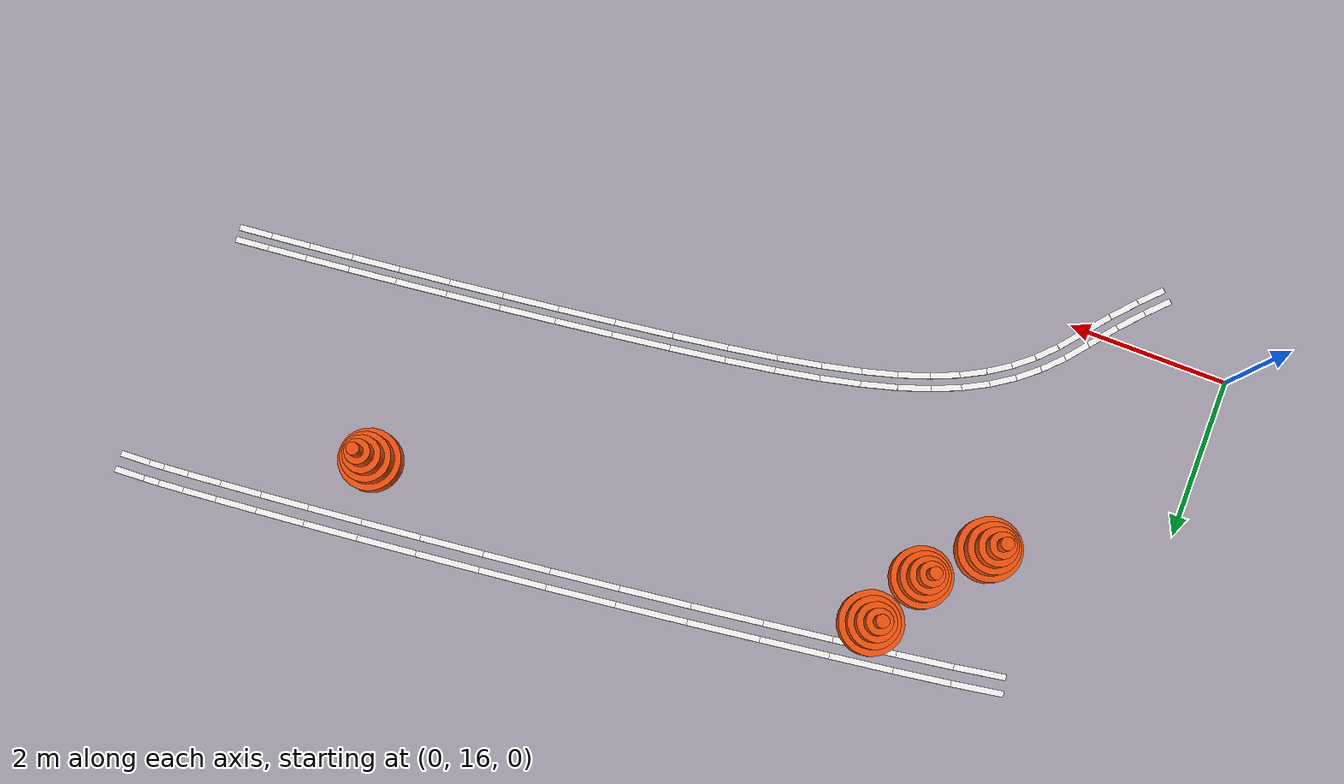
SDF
<sdf version="1.9">
 <world name="igvc_competition">
  <model name="Line_001_0096">
   <static>1</static>
   <pose>12.0856 21.6715 0.011 0 0 -3.091013</pose>
   <link name="link">
    <visual name="visual">
     <geometry><box><size>0.3699 0.0762 0.012</size></box></geometry>
     <material>
      <ambient>0.98 0.98 0.98 1</ambient>
      <diffuse>0.98 0.98 0.98 1</diffuse>
      <specular>0.05 0.05 0.05 1</specular>
      <emissive>0.9 0.9 0.9 1</emissive>
     </material>
    </visual>
   </link>
  </model>
  <model name="Line_001_0097">
   <static>1</static>
   <pose>12.0749 21.8713 0.011 0 0 -3.090726</pose>
   <link name="link">
    <visual name="visual">
     <geometry><box><size>0.3737 0.0762 0.012</size></box></geometry>
     <material>
      <ambient>0.98 0.98 0.98 1</ambient>
      <diffuse>0.98 0.98 0.98 1</diffuse>
      <specular>0.05 0.05 0.05 1</specular>
      <emissive>0.9 0.9 0.9 1</emissive>
     </material>
    </visual>
   </link>
  </model>
  <model name="Line_001_0098">
   <static>1</static>
   <pose>11.8079 21.6552 0.011 0 0 -3.066506</pose>
   <link name="link">
    <visual name="visual">
     <geometry><box><size>0.1866 0.0762 0.012</size></box></geometry>
     <material>
      <ambient>0.98 0.98 0.98 1</ambient>
      <diffuse>0.98 0.98 0.98 1</diffuse>
      <specular>0.05 0.05 0.05 1</specular>
      <emissive>0.9 0.9 0.9 1</emissive>
     </material>
    </visual>
   </link>
  </model>
  <model name="Line_001_0099">
   <static>1</static>
   <pose>11.7934 21.8547 0.011 0 0 -3.066877</pose>
   <link name="link">
    <visual name="visual">
     <geometry><box><size>0.1902 0.0762 0.012</size></box></geometry>
     <material>
      <ambient>0.98 0.98 0.98 1</ambient>
      <diffuse>0.98 0.98 0.98 1</diffuse>
      <specular>0.05 0.05 0.05 1</specular>
      <emissive>0.9 0.9 0.9 1</emissive>
     </material>
    </visual>
   </link>
  </model>
  <model name="Line_001_0100">
   <static>1</static>
   <pose>11.5619 21.6348 0.011 0 0 -3.054177</pose>
   <link name="link">
    <visual name="visual">
     <geometry><box><size>0.3070 0.0762 0.012</size></box></geometry>
     <material>
      <ambient>0.98 0.98 0.98 1</ambient>
      <diffuse>0.98 0.98 0.98 1</diffuse>
      <specular>0.05 0.05 0.05 1</specular>
      <emissive>0.9 0.9 0.9 1</emissive>
     </material>
    </visual>
   </link>
  </model>
  <model name="Line_001_0101">
   <static>1</static>
   <pose>11.5447 21.8341 0.011 0 0 -3.054097</pose>
   <link name="link">
    <visual name="visual">
     <geometry><box><size>0.3090 0.0762 0.012</size></box></geometry>
     <material>
      <ambient>0.98 0.98 0.98 1</ambient>
      <diffuse>0.98 0.98 0.98 1</diffuse>
      <specular>0.05 0.05 0.05 1</specular>
      <emissive>0.9 0.9 0.9 1</emissive>
     </material>
    </visual>
   </link>
  </model>
  <model name="Line_001_0102">
   <static>1</static>
   <pose>11.2020 21.6018 0.011 0 0 -3.047450</pose>
   <link name="link">
    <visual name="visual">
     <geometry><box><size>0.4159 0.0762 0.012</size></box></geometry>
     <material>
      <ambient>0.98 0.98 0.98 1</ambient>
      <diffuse>0.98 0.98 0.98 1</diffuse>
      <specular>0.05 0.05 0.05 1</specular>
      <emissive>0.9 0.9 0.9 1</emissive>
     </material>
    </visual>
   </link>
  </model>
  <model name="Line_001_0103">
   <static>1</static>
   <pose>11.1832 21.8010 0.011 0 0 -3.047459</pose>
   <link name="link">
    <visual name="visual">
     <geometry><box><size>0.4170 0.0762 0.012</size></box></geometry>
     <material>
      <ambient>0.98 0.98 0.98 1</ambient>
      <diffuse>0.98 0.98 0.98 1</diffuse>
      <specular>0.05 0.05 0.05 1</specular>
      <emissive>0.9 0.9 0.9 1</emissive>
     </material>
    </visual>
   </link>
  </model>
  <model name="Line_001_0104">
   <static>1</static>
   <pose>10.7394 21.5570 0.011 0 0 -3.042680</pose>
   <link name="link">
    <visual name="visual">
     <geometry><box><size>0.5134 0.0762 0.012</size></box></geometry>
     <material>
      <ambient>0.98 0.98 0.98 1</ambient>
      <diffuse>0.98 0.98 0.98 1</diffuse>
      <specular>0.05 0.05 0.05 1</specular>
      <emissive>0.9 0.9 0.9 1</emissive>
     </material>
    </visual>
   </link>
  </model>
  <model name="Line_001_0105">
   <static>1</static>
   <pose>10.7198 21.7560 0.011 0 0 -3.042640</pose>
   <link name="link">
    <visual name="visual">
     <geometry><box><size>0.5142 0.0762 0.012</size></box></geometry>
     <material>
      <ambient>0.98 0.98 0.98 1</ambient>
      <diffuse>0.98 0.98 0.98 1</diffuse>
      <specular>0.05 0.05 0.05 1</specular>
      <emissive>0.9 0.9 0.9 1</emissive>
     </material>
    </visual>
   </link>
  </model>
  <model name="Line_001_0106">
   <static>1</static>
   <pose>10.1857 21.5007 0.011 0 0 -3.038357</pose>
   <link name="link">
    <visual name="visual">
     <geometry><box><size>0.5997 0.0762 0.012</size></box></geometry>
     <material>
      <ambient>0.98 0.98 0.98 1</ambient>
      <diffuse>0.98 0.98 0.98 1</diffuse>
      <specular>0.05 0.05 0.05 1</specular>
      <emissive>0.9 0.9 0.9 1</emissive>
     </material>
    </visual>
   </link>
  </model>
  <model name="Line_001_0107">
   <static>1</static>
   <pose>10.1652 21.6996 0.011 0 0 -3.038345</pose>
   <link name="link">
    <visual name="visual">
     <geometry><box><size>0.6006 0.0762 0.012</size></box></geometry>
     <material>
      <ambient>0.98 0.98 0.98 1</ambient>
      <diffuse>0.98 0.98 0.98 1</diffuse>
      <specular>0.05 0.05 0.05 1</specular>
      <emissive>0.9 0.9 0.9 1</emissive>
     </material>
    </visual>
   </link>
  </model>
  <model name="Line_001_0108">
   <static>1</static>
   <pose>9.5519 21.4337 0.011 0 0 -3.034420</pose>
   <link name="link">
    <visual name="visual">
     <geometry><box><size>0.6750 0.0762 0.012</size></box></geometry>
     <material>
      <ambient>0.98 0.98 0.98 1</ambient>
      <diffuse>0.98 0.98 0.98 1</diffuse>
      <specular>0.05 0.05 0.05 1</specular>
      <emissive>0.9 0.9 0.9 1</emissive>
     </material>
    </visual>
   </link>
  </model>
  <model name="Line_001_0109">
   <static>1</static>
   <pose>9.5305 21.6326 0.011 0 0 -3.034400</pose>
   <link name="link">
    <visual name="visual">
     <geometry><box><size>0.6758 0.0762 0.012</size></box></geometry>
     <material>
      <ambient>0.98 0.98 0.98 1</ambient>
      <diffuse>0.98 0.98 0.98 1</diffuse>
      <specular>0.05 0.05 0.05 1</specular>
      <emissive>0.9 0.9 0.9 1</emissive>
     </material>
    </visual>
   </link>
  </model>
  <model name="Line_001_0110">
   <static>1</static>
   <pose>8.8491 21.3565 0.011 0 0 -3.030278</pose>
   <link name="link">
    <visual name="visual">
     <geometry><box><size>0.7391 0.0762 0.012</size></box></geometry>
     <material>
      <ambient>0.98 0.98 0.98 1</ambient>
      <diffuse>0.98 0.98 0.98 1</diffuse>
      <specular>0.05 0.05 0.05 1</specular>
      <emissive>0.9 0.9 0.9 1</emissive>
     </material>
    </visual>
   </link>
  </model>
  <model name="Line_001_0111">
   <static>1</static>
   <pose>8.8270 21.5553 0.011 0 0 -3.030398</pose>
   <link name="link">
    <visual name="visual">
     <geometry><box><size>0.7399 0.0762 0.012</size></box></geometry>
     <material>
      <ambient>0.98 0.98 0.98 1</ambient>
      <diffuse>0.98 0.98 0.98 1</diffuse>
      <specular>0.05 0.05 0.05 1</specular>
      <emissive>0.9 0.9 0.9 1</emissive>
     </material>
    </visual>
   </link>
  </model>
  <model name="Line_001_0112">
   <static>1</static>
   <pose>8.0885 21.2698 0.011 0 0 -3.026070</pose>
   <link name="link">
    <visual name="visual">
     <geometry><box><size>0.7921 0.0762 0.012</size></box></geometry>
     <material>
      <ambient>0.98 0.98 0.98 1</ambient>
      <diffuse>0.98 0.98 0.98 1</diffuse>
      <specular>0.05 0.05 0.05 1</specular>
      <emissive>0.9 0.9 0.9 1</emissive>
     </material>
    </visual>
   </link>
  </model>
  <model name="Line_001_0113">
   <static>1</static>
   <pose>8.0655 21.4686 0.011 0 0 -3.025950</pose>
   <link name="link">
    <visual name="visual">
     <geometry><box><size>0.7930 0.0762 0.012</size></box></geometry>
     <material>
      <ambient>0.98 0.98 0.98 1</ambient>
      <diffuse>0.98 0.98 0.98 1</diffuse>
      <specular>0.05 0.05 0.05 1</specular>
      <emissive>0.9 0.9 0.9 1</emissive>
     </material>
    </visual>
   </link>
  </model>
  <model name="Line_001_0114">
   <static>1</static>
   <pose>7.2811 21.1741 0.011 0 0 -3.021283</pose>
   <link name="link">
    <visual name="visual">
     <geometry><box><size>0.8340 0.0762 0.012</size></box></geometry>
     <material>
      <ambient>0.98 0.98 0.98 1</ambient>
      <diffuse>0.98 0.98 0.98 1</diffuse>
      <specular>0.05 0.05 0.05 1</specular>
      <emissive>0.9 0.9 0.9 1</emissive>
     </material>
    </visual>
   </link>
  </model>
  <model name="Line_001_0115">
   <static>1</static>
   <pose>7.2571 21.3727 0.011 0 0 -3.021308</pose>
   <link name="link">
    <visual name="visual">
     <geometry><box><size>0.8350 0.0762 0.012</size></box></geometry>
     <material>
      <ambient>0.98 0.98 0.98 1</ambient>
      <diffuse>0.98 0.98 0.98 1</diffuse>
      <specular>0.05 0.05 0.05 1</specular>
      <emissive>0.9 0.9 0.9 1</emissive>
     </material>
    </visual>
   </link>
  </model>
  <model name="Line_001_0116">
   <static>1</static>
   <pose>6.4381 21.0699 0.011 0 0 -3.016047</pose>
   <link name="link">
    <visual name="visual">
     <geometry><box><size>0.8649 0.0762 0.012</size></box></geometry>
     <material>
      <ambient>0.98 0.98 0.98 1</ambient>
      <diffuse>0.98 0.98 0.98 1</diffuse>
      <specular>0.05 0.05 0.05 1</specular>
      <emissive>0.9 0.9 0.9 1</emissive>
     </material>
    </visual>
   </link>
  </model>
  <model name="Line_001_0117">
   <static>1</static>
   <pose>6.4130 21.2684 0.011 0 0 -3.016092</pose>
   <link name="link">
    <visual name="visual">
     <geometry><box><size>0.8660 0.0762 0.012</size></box></geometry>
     <material>
      <ambient>0.98 0.98 0.98 1</ambient>
      <diffuse>0.98 0.98 0.98 1</diffuse>
      <specular>0.05 0.05 0.05 1</specular>
      <emissive>0.9 0.9 0.9 1</emissive>
     </material>
    </visual>
   </link>
  </model>
  <model name="Line_001_0118">
   <static>1</static>
   <pose>5.5705 20.9579 0.011 0 0 -3.010438</pose>
   <link name="link">
    <visual name="visual">
     <geometry><box><size>0.8847 0.0762 0.012</size></box></geometry>
     <material>
      <ambient>0.98 0.98 0.98 1</ambient>
      <diffuse>0.98 0.98 0.98 1</diffuse>
      <specular>0.05 0.05 0.05 1</specular>
      <emissive>0.9 0.9 0.9 1</emissive>
     </material>
    </visual>
   </link>
  </model>
  <model name="Line_001_0119">
   <static>1</static>
   <pose>5.5442 21.1562 0.011 0 0 -3.010391</pose>
   <link name="link">
    <visual name="visual">
     <geometry><box><size>0.8859 0.0762 0.012</size></box></geometry>
     <material>
      <ambient>0.98 0.98 0.98 1</ambient>
      <diffuse>0.98 0.98 0.98 1</diffuse>
      <specular>0.05 0.05 0.05 1</specular>
      <emissive>0.9 0.9 0.9 1</emissive>
     </material>
    </visual>
   </link>
  </model>
  <model name="Line_001_0120">
   <static>1</static>
   <pose>4.6892 20.8387 0.011 0 0 -3.003762</pose>
   <link name="link">
    <visual name="visual">
     <geometry><box><size>0.8938 0.0762 0.012</size></box></geometry>
     <material>
      <ambient>0.98 0.98 0.98 1</ambient>
      <diffuse>0.98 0.98 0.98 1</diffuse>
      <specular>0.05 0.05 0.05 1</specular>
      <emissive>0.9 0.9 0.9 1</emissive>
     </material>
    </visual>
   </link>
  </model>
  <model name="Line_001_0121">
   <static>1</static>
   <pose>4.6620 21.0369 0.011 0 0 -3.003790</pose>
   <link name="link">
    <visual name="visual">
     <geometry><box><size>0.8947 0.0762 0.012</size></box></geometry>
     <material>
      <ambient>0.98 0.98 0.98 1</ambient>
      <diffuse>0.98 0.98 0.98 1</diffuse>
      <specular>0.05 0.05 0.05 1</specular>
      <emissive>0.9 0.9 0.9 1</emissive>
     </material>
    </visual>
   </link>
  </model>
  <model name="Line_001_0122">
   <static>1</static>
   <pose>3.8236 20.7176 0.011 0 0 -3.001500</pose>
   <link name="link">
    <visual name="visual">
     <geometry><box><size>0.8544 0.0762 0.012</size></box></geometry>
     <material>
      <ambient>0.98 0.98 0.98 1</ambient>
      <diffuse>0.98 0.98 0.98 1</diffuse>
      <specular>0.05 0.05 0.05 1</specular>
      <emissive>0.9 0.9 0.9 1</emissive>
     </material>
    </visual>
   </link>
  </model>
  <model name="Line_001_0123">
   <static>1</static>
   <pose>3.7957 20.9158 0.011 0 0 -3.001565</pose>
   <link name="link">
    <visual name="visual">
     <geometry><box><size>0.8548 0.0762 0.012</size></box></geometry>
     <material>
      <ambient>0.98 0.98 0.98 1</ambient>
      <diffuse>0.98 0.98 0.98 1</diffuse>
      <specular>0.05 0.05 0.05 1</specular>
      <emissive>0.9 0.9 0.9 1</emissive>
     </material>
    </visual>
   </link>
  </model>
  <model name="Line_001_0124">
   <static>1</static>
   <pose>3.0162 20.6031 0.011 0 0 -2.999859</pose>
   <link name="link">
    <visual name="visual">
     <geometry><box><size>0.7766 0.0762 0.012</size></box></geometry>
     <material>
      <ambient>0.98 0.98 0.98 1</ambient>
      <diffuse>0.98 0.98 0.98 1</diffuse>
      <specular>0.05 0.05 0.05 1</specular>
      <emissive>0.9 0.9 0.9 1</emissive>
     </material>
    </visual>
   </link>
  </model>
  <model name="Line_001_0125">
   <static>1</static>
   <pose>2.9875 20.8011 0.011 0 0 -2.999805</pose>
   <link name="link">
    <visual name="visual">
     <geometry><box><size>0.7777 0.0762 0.012</size></box></geometry>
     <material>
      <ambient>0.98 0.98 0.98 1</ambient>
      <diffuse>0.98 0.98 0.98 1</diffuse>
      <specular>0.05 0.05 0.05 1</specular>
      <emissive>0.9 0.9 0.9 1</emissive>
     </material>
    </visual>
   </link>
  </model>
  <model name="Line_001_0126">
   <static>1</static>
   <pose>2.2842 20.4954 0.011 0 0 -2.990446</pose>
   <link name="link">
    <visual name="visual">
     <geometry><box><size>0.7033 0.0762 0.012</size></box></geometry>
     <material>
      <ambient>0.98 0.98 0.98 1</ambient>
      <diffuse>0.98 0.98 0.98 1</diffuse>
      <specular>0.05 0.05 0.05 1</specular>
      <emissive>0.9 0.9 0.9 1</emissive>
     </material>
    </visual>
   </link>
  </model>
  <model name="Line_001_0127">
   <static>1</static>
   <pose>2.2535 20.6930 0.011 0 0 -2.990343</pose>
   <link name="link">
    <visual name="visual">
     <geometry><box><size>0.7062 0.0762 0.012</size></box></geometry>
     <material>
      <ambient>0.98 0.98 0.98 1</ambient>
      <diffuse>0.98 0.98 0.98 1</diffuse>
      <specular>0.05 0.05 0.05 1</specular>
      <emissive>0.9 0.9 0.9 1</emissive>
     </material>
    </visual>
   </link>
  </model>
  <model name="Line_001_0128">
   <static>1</static>
   <pose>1.6237 20.3884 0.011 0 0 -2.970643</pose>
   <link name="link">
    <visual name="visual">
     <geometry><box><size>0.6349 0.0762 0.012</size></box></geometry>
     <material>
      <ambient>0.98 0.98 0.98 1</ambient>
      <diffuse>0.98 0.98 0.98 1</diffuse>
      <specular>0.05 0.05 0.05 1</specular>
      <emissive>0.9 0.9 0.9 1</emissive>
     </material>
    </visual>
   </link>
  </model>
  <model name="Line_001_0129">
   <static>1</static>
   <pose>1.5891 20.5853 0.011 0 0 -2.970666</pose>
   <link name="link">
    <visual name="visual">
     <geometry><box><size>0.6402 0.0762 0.012</size></box></geometry>
     <material>
      <ambient>0.98 0.98 0.98 1</ambient>
      <diffuse>0.98 0.98 0.98 1</diffuse>
      <specular>0.05 0.05 0.05 1</specular>
      <emissive>0.9 0.9 0.9 1</emissive>
     </material>
    </visual>
   </link>
  </model>
  <model name="Line_002_0104">
   <static>1</static>
   <pose>11.8320 18.5348 0.011 0 0 -3.040524</pose>
   <link name="link">
    <visual name="visual">
     <geometry><box><size>0.4192 0.0762 0.012</size></box></geometry>
     <material>
      <ambient>0.98 0.98 0.98 1</ambient>
      <diffuse>0.98 0.98 0.98 1</diffuse>
      <specular>0.05 0.05 0.05 1</specular>
      <emissive>0.9 0.9 0.9 1</emissive>
     </material>
    </visual>
   </link>
  </model>
  <model name="Line_002_0105">
   <static>1</static>
   <pose>11.8168 18.6921 0.011 0 0 -3.040455</pose>
   <link name="link">
    <visual name="visual">
     <geometry><box><size>0.4199 0.0762 0.012</size></box></geometry>
     <material>
      <ambient>0.98 0.98 0.98 1</ambient>
      <diffuse>0.98 0.98 0.98 1</diffuse>
      <specular>0.05 0.05 0.05 1</specular>
      <emissive>0.9 0.9 0.9 1</emissive>
     </material>
    </visual>
   </link>
  </model>
  <model name="Line_002_0106">
   <static>1</static>
   <pose>11.3800 18.4879 0.011 0 0 -3.036459</pose>
   <link name="link">
    <visual name="visual">
     <geometry><box><size>0.4898 0.0762 0.012</size></box></geometry>
     <material>
      <ambient>0.98 0.98 0.98 1</ambient>
      <diffuse>0.98 0.98 0.98 1</diffuse>
      <specular>0.05 0.05 0.05 1</specular>
      <emissive>0.9 0.9 0.9 1</emissive>
     </material>
    </visual>
   </link>
  </model>
  <model name="Line_002_0107">
   <static>1</static>
   <pose>11.3640 18.6452 0.011 0 0 -3.036406</pose>
   <link name="link">
    <visual name="visual">
     <geometry><box><size>0.4905 0.0762 0.012</size></box></geometry>
     <material>
      <ambient>0.98 0.98 0.98 1</ambient>
      <diffuse>0.98 0.98 0.98 1</diffuse>
      <specular>0.05 0.05 0.05 1</specular>
      <emissive>0.9 0.9 0.9 1</emissive>
     </material>
    </visual>
   </link>
  </model>
  <model name="Line_002_0108">
   <static>1</static>
   <pose>10.8624 18.4322 0.011 0 0 -3.032538</pose>
   <link name="link">
    <visual name="visual">
     <geometry><box><size>0.5513 0.0762 0.012</size></box></geometry>
     <material>
      <ambient>0.98 0.98 0.98 1</ambient>
      <diffuse>0.98 0.98 0.98 1</diffuse>
      <specular>0.05 0.05 0.05 1</specular>
      <emissive>0.9 0.9 0.9 1</emissive>
     </material>
    </visual>
   </link>
  </model>
  <model name="Line_002_0109">
   <static>1</static>
   <pose>10.8458 18.5893 0.011 0 0 -3.032476</pose>
   <link name="link">
    <visual name="visual">
     <geometry><box><size>0.5519 0.0762 0.012</size></box></geometry>
     <material>
      <ambient>0.98 0.98 0.98 1</ambient>
      <diffuse>0.98 0.98 0.98 1</diffuse>
      <specular>0.05 0.05 0.05 1</specular>
      <emissive>0.9 0.9 0.9 1</emissive>
     </material>
    </visual>
   </link>
  </model>
  <model name="Line_002_0110">
   <static>1</static>
   <pose>10.2885 18.3681 0.011 0 0 -3.028539</pose>
   <link name="link">
    <visual name="visual">
     <geometry><box><size>0.6037 0.0762 0.012</size></box></geometry>
     <material>
      <ambient>0.98 0.98 0.98 1</ambient>
      <diffuse>0.98 0.98 0.98 1</diffuse>
      <specular>0.05 0.05 0.05 1</specular>
      <emissive>0.9 0.9 0.9 1</emissive>
     </material>
    </visual>
   </link>
  </model>
  <model name="Line_002_0111">
   <static>1</static>
   <pose>10.2713 18.5252 0.011 0 0 -3.028505</pose>
   <link name="link">
    <visual name="visual">
     <geometry><box><size>0.6044 0.0762 0.012</size></box></geometry>
     <material>
      <ambient>0.98 0.98 0.98 1</ambient>
      <diffuse>0.98 0.98 0.98 1</diffuse>
      <specular>0.05 0.05 0.05 1</specular>
      <emissive>0.9 0.9 0.9 1</emissive>
     </material>
    </visual>
   </link>
  </model>
  <model name="Line_002_0112">
   <static>1</static>
   <pose>9.6673 18.2963 0.011 0 0 -3.024312</pose>
   <link name="link">
    <visual name="visual">
     <geometry><box><size>0.6469 0.0762 0.012</size></box></geometry>
     <material>
      <ambient>0.98 0.98 0.98 1</ambient>
      <diffuse>0.98 0.98 0.98 1</diffuse>
      <specular>0.05 0.05 0.05 1</specular>
      <emissive>0.9 0.9 0.9 1</emissive>
     </material>
    </visual>
   </link>
  </model>
  <model name="Line_002_0113">
   <static>1</static>
   <pose>9.6494 18.4533 0.011 0 0 -3.024439</pose>
   <link name="link">
    <visual name="visual">
     <geometry><box><size>0.6476 0.0762 0.012</size></box></geometry>
     <material>
      <ambient>0.98 0.98 0.98 1</ambient>
      <diffuse>0.98 0.98 0.98 1</diffuse>
      <specular>0.05 0.05 0.05 1</specular>
      <emissive>0.9 0.9 0.9 1</emissive>
     </material>
    </visual>
   </link>
  </model>
  <model name="Line_002_0114">
   <static>1</static>
   <pose>9.0081 18.2171 0.011 0 0 -3.019878</pose>
   <link name="link">
    <visual name="visual">
     <geometry><box><size>0.6811 0.0762 0.012</size></box></geometry>
     <material>
      <ambient>0.98 0.98 0.98 1</ambient>
      <diffuse>0.98 0.98 0.98 1</diffuse>
      <specular>0.05 0.05 0.05 1</specular>
      <emissive>0.9 0.9 0.9 1</emissive>
     </material>
    </visual>
   </link>
  </model>
  <model name="Line_002_0115">
   <static>1</static>
   <pose>8.9893 18.3740 0.011 0 0 -3.019893</pose>
   <link name="link">
    <visual name="visual">
     <geometry><box><size>0.6820 0.0762 0.012</size></box></geometry>
     <material>
      <ambient>0.98 0.98 0.98 1</ambient>
      <diffuse>0.98 0.98 0.98 1</diffuse>
      <specular>0.05 0.05 0.05 1</specular>
      <emissive>0.9 0.9 0.9 1</emissive>
     </material>
    </visual>
   </link>
  </model>
  <model name="Line_002_0116">
   <static>1</static>
   <pose>8.3196 18.1311 0.011 0 0 -3.014850</pose>
   <link name="link">
    <visual name="visual">
     <geometry><box><size>0.7065 0.0762 0.012</size></box></geometry>
     <material>
      <ambient>0.98 0.98 0.98 1</ambient>
      <diffuse>0.98 0.98 0.98 1</diffuse>
      <specular>0.05 0.05 0.05 1</specular>
      <emissive>0.9 0.9 0.9 1</emissive>
     </material>
    </visual>
   </link>
  </model>
  <model name="Line_002_0117">
   <static>1</static>
   <pose>8.3000 18.2879 0.011 0 0 -3.014853</pose>
   <link name="link">
    <visual name="visual">
     <geometry><box><size>0.7073 0.0762 0.012</size></box></geometry>
     <material>
      <ambient>0.98 0.98 0.98 1</ambient>
      <diffuse>0.98 0.98 0.98 1</diffuse>
      <specular>0.05 0.05 0.05 1</specular>
      <emissive>0.9 0.9 0.9 1</emissive>
     </material>
    </visual>
   </link>
  </model>
  <model name="Line_002_0118">
   <static>1</static>
   <pose>7.6111 18.0388 0.011 0 0 -3.009325</pose>
   <link name="link">
    <visual name="visual">
     <geometry><box><size>0.7226 0.0762 0.012</size></box></geometry>
     <material>
      <ambient>0.98 0.98 0.98 1</ambient>
      <diffuse>0.98 0.98 0.98 1</diffuse>
      <specular>0.05 0.05 0.05 1</specular>
      <emissive>0.9 0.9 0.9 1</emissive>
     </material>
    </visual>
   </link>
  </model>
  <model name="Line_002_0119">
   <static>1</static>
   <pose>7.5906 18.1955 0.011 0 0 -3.009233</pose>
   <link name="link">
    <visual name="visual">
     <geometry><box><size>0.7236 0.0762 0.012</size></box></geometry>
     <material>
      <ambient>0.98 0.98 0.98 1</ambient>
      <diffuse>0.98 0.98 0.98 1</diffuse>
      <specular>0.05 0.05 0.05 1</specular>
      <emissive>0.9 0.9 0.9 1</emissive>
     </material>
    </visual>
   </link>
  </model>
  <model name="Line_002_0120">
   <static>1</static>
   <pose>6.8916 17.9406 0.011 0 0 -3.002855</pose>
   <link name="link">
    <visual name="visual">
     <geometry><box><size>0.7296 0.0762 0.012</size></box></geometry>
     <material>
      <ambient>0.98 0.98 0.98 1</ambient>
      <diffuse>0.98 0.98 0.98 1</diffuse>
      <specular>0.05 0.05 0.05 1</specular>
      <emissive>0.9 0.9 0.9 1</emissive>
     </material>
    </visual>
   </link>
  </model>
  <model name="Line_002_0121">
   <static>1</static>
   <pose>6.8699 18.0971 0.011 0 0 -3.002849</pose>
   <link name="link">
    <visual name="visual">
     <geometry><box><size>0.7310 0.0762 0.012</size></box></geometry>
     <material>
      <ambient>0.98 0.98 0.98 1</ambient>
      <diffuse>0.98 0.98 0.98 1</diffuse>
      <specular>0.05 0.05 0.05 1</specular>
      <emissive>0.9 0.9 0.9 1</emissive>
     </material>
    </visual>
   </link>
  </model>
  <model name="Line_002_0122">
   <static>1</static>
   <pose>6.1881 17.8389 0.011 0 0 -2.992788</pose>
   <link name="link">
    <visual name="visual">
     <geometry><box><size>0.6920 0.0762 0.012</size></box></geometry>
     <material>
      <ambient>0.98 0.98 0.98 1</ambient>
      <diffuse>0.98 0.98 0.98 1</diffuse>
      <specular>0.05 0.05 0.05 1</specular>
      <emissive>0.9 0.9 0.9 1</emissive>
     </material>
    </visual>
   </link>
  </model>
  <model name="Line_002_0123">
   <static>1</static>
   <pose>6.1645 17.9952 0.011 0 0 -2.992874</pose>
   <link name="link">
    <visual name="visual">
     <geometry><box><size>0.6945 0.0762 0.012</size></box></geometry>
     <material>
      <ambient>0.98 0.98 0.98 1</ambient>
      <diffuse>0.98 0.98 0.98 1</diffuse>
      <specular>0.05 0.05 0.05 1</specular>
      <emissive>0.9 0.9 0.9 1</emissive>
     </material>
    </visual>
   </link>
  </model>
  <model name="Line_002_0124">
   <static>1</static>
   <pose>5.5401 17.7363 0.011 0 0 -2.975384</pose>
   <link name="link">
    <visual name="visual">
     <geometry><box><size>0.6201 0.0762 0.012</size></box></geometry>
     <material>
      <ambient>0.98 0.98 0.98 1</ambient>
      <diffuse>0.98 0.98 0.98 1</diffuse>
      <specular>0.05 0.05 0.05 1</specular>
      <emissive>0.9 0.9 0.9 1</emissive>
     </material>
    </visual>
   </link>
  </model>
  <model name="Line_002_0125">
   <static>1</static>
   <pose>5.5136 17.8920 0.011 0 0 -2.975205</pose>
   <link name="link">
    <visual name="visual">
     <geometry><box><size>0.6237 0.0762 0.012</size></box></geometry>
     <material>
      <ambient>0.98 0.98 0.98 1</ambient>
      <diffuse>0.98 0.98 0.98 1</diffuse>
      <specular>0.05 0.05 0.05 1</specular>
      <emissive>0.9 0.9 0.9 1</emissive>
     </material>
    </visual>
   </link>
  </model>
  <model name="Line_002_0126">
   <static>1</static>
   <pose>4.9620 17.6322 0.011 0 0 -2.950031</pose>
   <link name="link">
    <visual name="visual">
     <geometry><box><size>0.5546 0.0762 0.012</size></box></geometry>
     <material>
      <ambient>0.98 0.98 0.98 1</ambient>
      <diffuse>0.98 0.98 0.98 1</diffuse>
      <specular>0.05 0.05 0.05 1</specular>
      <emissive>0.9 0.9 0.9 1</emissive>
     </material>
    </visual>
   </link>
  </model>
  <model name="Line_002_0127">
   <static>1</static>
   <pose>4.9313 17.7872 0.011 0 0 -2.950295</pose>
   <link name="link">
    <visual name="visual">
     <geometry><box><size>0.5596 0.0762 0.012</size></box></geometry>
     <material>
      <ambient>0.98 0.98 0.98 1</ambient>
      <diffuse>0.98 0.98 0.98 1</diffuse>
      <specular>0.05 0.05 0.05 1</specular>
      <emissive>0.9 0.9 0.9 1</emissive>
     </material>
    </visual>
   </link>
  </model>
  <model name="Line_002_0128">
   <static>1</static>
   <pose>4.4483 17.5239 0.011 0 0 -2.915656</pose>
   <link name="link">
    <visual name="visual">
     <geometry><box><size>0.4955 0.0762 0.012</size></box></geometry>
     <material>
      <ambient>0.98 0.98 0.98 1</ambient>
      <diffuse>0.98 0.98 0.98 1</diffuse>
      <specular>0.05 0.05 0.05 1</specular>
      <emissive>0.9 0.9 0.9 1</emissive>
     </material>
    </visual>
   </link>
  </model>
  <model name="Line_002_0129">
   <static>1</static>
   <pose>4.4118 17.6776 0.011 0 0 -2.915346</pose>
   <link name="link">
    <visual name="visual">
     <geometry><box><size>0.5024 0.0762 0.012</size></box></geometry>
     <material>
      <ambient>0.98 0.98 0.98 1</ambient>
      <diffuse>0.98 0.98 0.98 1</diffuse>
      <specular>0.05 0.05 0.05 1</specular>
      <emissive>0.9 0.9 0.9 1</emissive>
     </material>
    </visual>
   </link>
  </model>
  <model name="Line_002_0130">
   <static>1</static>
   <pose>3.9933 17.4087 0.011 0 0 -2.869209</pose>
   <link name="link">
    <visual name="visual">
     <geometry><box><size>0.4434 0.0762 0.012</size></box></geometry>
     <material>
      <ambient>0.98 0.98 0.98 1</ambient>
      <diffuse>0.98 0.98 0.98 1</diffuse>
      <specular>0.05 0.05 0.05 1</specular>
      <emissive>0.9 0.9 0.9 1</emissive>
     </material>
    </visual>
   </link>
  </model>
  <model name="Line_002_0131">
   <static>1</static>
   <pose>3.9491 17.5605 0.011 0 0 -2.869214</pose>
   <link name="link">
    <visual name="visual">
     <geometry><box><size>0.4524 0.0762 0.012</size></box></geometry>
     <material>
      <ambient>0.98 0.98 0.98 1</ambient>
      <diffuse>0.98 0.98 0.98 1</diffuse>
      <specular>0.05 0.05 0.05 1</specular>
      <emissive>0.9 0.9 0.9 1</emissive>
     </material>
    </visual>
   </link>
  </model>
  <model name="Line_002_0132">
   <static>1</static>
   <pose>3.5913 17.2841 0.011 0 0 -2.809451</pose>
   <link name="link">
    <visual name="visual">
     <geometry><box><size>0.3987 0.0762 0.012</size></box></geometry>
     <material>
      <ambient>0.98 0.98 0.98 1</ambient>
      <diffuse>0.98 0.98 0.98 1</diffuse>
      <specular>0.05 0.05 0.05 1</specular>
      <emissive>0.9 0.9 0.9 1</emissive>
     </material>
    </visual>
   </link>
  </model>
  <model name="Line_002_0133">
   <static>1</static>
   <pose>3.5375 17.4327 0.011 0 0 -2.809430</pose>
   <link name="link">
    <visual name="visual">
     <geometry><box><size>0.4100 0.0762 0.012</size></box></geometry>
     <material>
      <ambient>0.98 0.98 0.98 1</ambient>
      <diffuse>0.98 0.98 0.98 1</diffuse>
      <specular>0.05 0.05 0.05 1</specular>
      <emissive>0.9 0.9 0.9 1</emissive>
     </material>
    </visual>
   </link>
  </model>
  <model name="Line_002_0134">
   <static>1</static>
   <pose>3.2366 17.1474 0.011 0 0 -2.734526</pose>
   <link name="link">
    <visual name="visual">
     <geometry><box><size>0.3622 0.0762 0.012</size></box></geometry>
     <material>
      <ambient>0.98 0.98 0.98 1</ambient>
      <diffuse>0.98 0.98 0.98 1</diffuse>
      <specular>0.05 0.05 0.05 1</specular>
      <emissive>0.9 0.9 0.9 1</emissive>
     </material>
    </visual>
   </link>
  </model>
  <model name="Line_002_0135">
   <static>1</static>
   <pose>3.1711 17.2914 0.011 0 0 -2.734361</pose>
   <link name="link">
    <visual name="visual">
     <geometry><box><size>0.3759 0.0762 0.012</size></box></geometry>
     <material>
      <ambient>0.98 0.98 0.98 1</ambient>
      <diffuse>0.98 0.98 0.98 1</diffuse>
      <specular>0.05 0.05 0.05 1</specular>
      <emissive>0.9 0.9 0.9 1</emissive>
     </material>
    </visual>
   </link>
  </model>
  <model name="Line_002_0136">
   <static>1</static>
   <pose>2.9231 16.9960 0.011 0 0 -2.645345</pose>
   <link name="link">
    <visual name="visual">
     <geometry><box><size>0.3348 0.0762 0.012</size></box></geometry>
     <material>
      <ambient>0.98 0.98 0.98 1</ambient>
      <diffuse>0.98 0.98 0.98 1</diffuse>
      <specular>0.05 0.05 0.05 1</specular>
      <emissive>0.9 0.9 0.9 1</emissive>
     </material>
    </visual>
   </link>
  </model>
  <model name="Line_002_0137">
   <static>1</static>
   <pose>2.8443 17.1335 0.011 0 0 -2.645159</pose>
   <link name="link">
    <visual name="visual">
     <geometry><box><size>0.3506 0.0762 0.012</size></box></geometry>
     <material>
      <ambient>0.98 0.98 0.98 1</ambient>
      <diffuse>0.98 0.98 0.98 1</diffuse>
      <specular>0.05 0.05 0.05 1</specular>
      <emissive>0.9 0.9 0.9 1</emissive>
     </material>
    </visual>
   </link>
  </model>
  <model name="Line_002_0138">
   <static>1</static>
   <pose>2.6446 16.8272 0.011 0 0 -2.545198</pose>
   <link name="link">
    <visual name="visual">
     <geometry><box><size>0.3173 0.0762 0.012</size></box></geometry>
     <material>
      <ambient>0.98 0.98 0.98 1</ambient>
      <diffuse>0.98 0.98 0.98 1</diffuse>
      <specular>0.05 0.05 0.05 1</specular>
      <emissive>0.9 0.9 0.9 1</emissive>
     </material>
    </visual>
   </link>
  </model>
  <model name="Line_002_0139">
   <static>1</static>
   <pose>2.5519 16.9562 0.011 0 0 -2.545376</pose>
   <link name="link">
    <visual name="visual">
     <geometry><box><size>0.3343 0.0762 0.012</size></box></geometry>
     <material>
      <ambient>0.98 0.98 0.98 1</ambient>
      <diffuse>0.98 0.98 0.98 1</diffuse>
      <specular>0.05 0.05 0.05 1</specular>
      <emissive>0.9 0.9 0.9 1</emissive>
     </material>
    </visual>
   </link>
  </model>
  <model name="Line_002_0140">
   <static>1</static>
   <pose>2.3948 16.6380 0.011 0 0 -2.440377</pose>
   <link name="link">
    <visual name="visual">
     <geometry><box><size>0.3103 0.0762 0.012</size></box></geometry>
     <material>
      <ambient>0.98 0.98 0.98 1</ambient>
      <diffuse>0.98 0.98 0.98 1</diffuse>
      <specular>0.05 0.05 0.05 1</specular>
      <emissive>0.9 0.9 0.9 1</emissive>
     </material>
    </visual>
   </link>
  </model>
  <model name="Line_002_0141">
   <static>1</static>
   <pose>2.2886 16.7568 0.011 0 0 -2.440359</pose>
   <link name="link">
    <visual name="visual">
     <geometry><box><size>0.3272 0.0762 0.012</size></box></geometry>
     <material>
      <ambient>0.98 0.98 0.98 1</ambient>
      <diffuse>0.98 0.98 0.98 1</diffuse>
      <specular>0.05 0.05 0.05 1</specular>
      <emissive>0.9 0.9 0.9 1</emissive>
     </material>
    </visual>
   </link>
  </model>
  <model name="Line_002_0142">
   <static>1</static>
   <pose>2.1674 16.4252 0.011 0 0 -2.339048</pose>
   <link name="link">
    <visual name="visual">
     <geometry><box><size>0.3134 0.0762 0.012</size></box></geometry>
     <material>
      <ambient>0.98 0.98 0.98 1</ambient>
      <diffuse>0.98 0.98 0.98 1</diffuse>
      <specular>0.05 0.05 0.05 1</specular>
      <emissive>0.9 0.9 0.9 1</emissive>
     </material>
    </visual>
   </link>
  </model>
  <model name="Line_002_0143">
   <static>1</static>
   <pose>2.0493 16.5329 0.011 0 0 -2.339218</pose>
   <link name="link">
    <visual name="visual">
     <geometry><box><size>0.3291 0.0762 0.012</size></box></geometry>
     <material>
      <ambient>0.98 0.98 0.98 1</ambient>
      <diffuse>0.98 0.98 0.98 1</diffuse>
      <specular>0.05 0.05 0.05 1</specular>
      <emissive>0.9 0.9 0.9 1</emissive>
     </material>
    </visual>
   </link>
  </model>
  <model name="Line_002_0144">
   <static>1</static>
   <pose>1.9554 16.1844 0.011 0 0 -2.248718</pose>
   <link name="link">
    <visual name="visual">
     <geometry><box><size>0.3289 0.0762 0.012</size></box></geometry>
     <material>
      <ambient>0.98 0.98 0.98 1</ambient>
      <diffuse>0.98 0.98 0.98 1</diffuse>
      <specular>0.05 0.05 0.05 1</specular>
      <emissive>0.9 0.9 0.9 1</emissive>
     </material>
    </visual>
   </link>
  </model>
  <model name="Line_002_0145">
   <static>1</static>
   <pose>1.8293 16.2835 0.011 0 0 -2.248922</pose>
   <link name="link">
    <visual name="visual">
     <geometry><box><size>0.3368 0.0762 0.012</size></box></geometry>
     <material>
      <ambient>0.98 0.98 0.98 1</ambient>
      <diffuse>0.98 0.98 0.98 1</diffuse>
      <specular>0.05 0.05 0.05 1</specular>
      <emissive>0.9 0.9 0.9 1</emissive>
     </material>
    </visual>
   </link>
  </model>
  <model name="Line_002_0146">
   <static>1</static>
   <pose>1.7202 15.8897 0.011 0 0 -2.241019</pose>
   <link name="link">
    <visual name="visual">
     <geometry><box><size>0.4252 0.0762 0.012</size></box></geometry>
     <material>
      <ambient>0.98 0.98 0.98 1</ambient>
      <diffuse>0.98 0.98 0.98 1</diffuse>
      <specular>0.05 0.05 0.05 1</specular>
      <emissive>0.9 0.9 0.9 1</emissive>
     </material>
    </visual>
   </link>
  </model>
  <model name="Line_002_0147">
   <static>1</static>
   <pose>1.5928 15.9872 0.011 0 0 -2.240978</pose>
   <link name="link">
    <visual name="visual">
     <geometry><box><size>0.4213 0.0762 0.012</size></box></geometry>
     <material>
      <ambient>0.98 0.98 0.98 1</ambient>
      <diffuse>0.98 0.98 0.98 1</diffuse>
      <specular>0.05 0.05 0.05 1</specular>
      <emissive>0.9 0.9 0.9 1</emissive>
     </material>
    </visual>
   </link>
  </model>
  <model name="Line_002_0148">
   <static>1</static>
   <pose>1.4575 15.5758 0.011 0 0 -2.296173</pose>
   <link name="link">
    <visual name="visual">
     <geometry><box><size>0.3937 0.0762 0.012</size></box></geometry>
     <material>
      <ambient>0.98 0.98 0.98 1</ambient>
      <diffuse>0.98 0.98 0.98 1</diffuse>
      <specular>0.05 0.05 0.05 1</specular>
      <emissive>0.9 0.9 0.9 1</emissive>
     </material>
    </visual>
   </link>
  </model>
  <model name="Line_002_0149">
   <static>1</static>
   <pose>1.3337 15.6775 0.011 0 0 -2.296149</pose>
   <link name="link">
    <visual name="visual">
     <geometry><box><size>0.3865 0.0762 0.012</size></box></geometry>
     <material>
      <ambient>0.98 0.98 0.98 1</ambient>
      <diffuse>0.98 0.98 0.98 1</diffuse>
      <specular>0.05 0.05 0.05 1</specular>
      <emissive>0.9 0.9 0.9 1</emissive>
     </material>
    </visual>
   </link>
  </model>
  <model name="Line_002_0150">
   <static>1</static>
   <pose>1.2014 15.2965 0.011 0 0 -2.330758</pose>
   <link name="link">
    <visual name="visual">
     <geometry><box><size>0.3642 0.0762 0.012</size></box></geometry>
     <material>
      <ambient>0.98 0.98 0.98 1</ambient>
      <diffuse>0.98 0.98 0.98 1</diffuse>
      <specular>0.05 0.05 0.05 1</specular>
      <emissive>0.9 0.9 0.9 1</emissive>
     </material>
    </visual>
   </link>
  </model>
  <model name="Line_002_0151">
   <static>1</static>
   <pose>1.0813 15.4022 0.011 0 0 -2.330901</pose>
   <link name="link">
    <visual name="visual">
     <geometry><box><size>0.3607 0.0762 0.012</size></box></geometry>
     <material>
      <ambient>0.98 0.98 0.98 1</ambient>
      <diffuse>0.98 0.98 0.98 1</diffuse>
      <specular>0.05 0.05 0.05 1</specular>
      <emissive>0.9 0.9 0.9 1</emissive>
     </material>
    </visual>
   </link>
  </model>
  <model name="Cones_057">
   <static>1</static>
   <pose>9.3731 20.6663 0 0 0 0</pose>
   <link name="link">
    <collision name="collision">
     <pose>0 0 0.5985 0 0 0</pose>
     <geometry><cylinder><radius>0.3831</radius><length>1.1969</length></cylinder></geometry>
    </collision>
    <visual name="visual_0">
     <pose>0 0 0.1197 0 0 0</pose>
     <geometry><cylinder><radius>0.3831</radius><length>0.2394</length></cylinder></geometry>
     <material>
      <ambient>0.95 0.32 0.05 1.0</ambient>
      <diffuse>0.95 0.32 0.05 1.0</diffuse>
      <specular>0.05 0.05 0.05 1</specular>
     </material>
    </visual>
    <visual name="visual_1">
     <pose>0 0 0.3591 0 0 0</pose>
     <geometry><cylinder><radius>0.3065</radius><length>0.2394</length></cylinder></geometry>
     <material>
      <ambient>0.95 0.32 0.05 1.0</ambient>
      <diffuse>0.95 0.32 0.05 1.0</diffuse>
      <specular>0.05 0.05 0.05 1</specular>
     </material>
    </visual>
    <visual name="visual_2">
     <pose>0 0 0.5985 0 0 0</pose>
     <geometry><cylinder><radius>0.2299</radius><length>0.2394</length></cylinder></geometry>
     <material>
      <ambient>0.95 0.32 0.05 1.0</ambient>
      <diffuse>0.95 0.32 0.05 1.0</diffuse>
      <specular>0.05 0.05 0.05 1</specular>
     </material>
    </visual>
    <visual name="visual_3">
     <pose>0 0 0.8378 0 0 0</pose>
     <geometry><cylinder><radius>0.1532</radius><length>0.2394</length></cylinder></geometry>
     <material>
      <ambient>0.95 0.32 0.05 1.0</ambient>
      <diffuse>0.95 0.32 0.05 1.0</diffuse>
      <specular>0.05 0.05 0.05 1</specular>
     </material>
    </visual>
    <visual name="visual_4">
     <pose>0 0 1.0772 0 0 0</pose>
     <geometry><cylinder><radius>0.0766</radius><length>0.2394</length></cylinder></geometry>
     <material>
      <ambient>0.95 0.32 0.05 1.0</ambient>
      <diffuse>0.95 0.32 0.05 1.0</diffuse>
      <specular>0.05 0.05 0.05 1</specular>
     </material>
    </visual>
   </link>
  </model>
  <model name="Cones_058">
   <static>1</static>
   <pose>3.0598 20.3187 0 0 0 0</pose>
   <link name="link">
    <collision name="collision">
     <pose>0 0 0.5985 0 0 0</pose>
     <geometry><cylinder><radius>0.3974</radius><length>1.1969</length></cylinder></geometry>
    </collision>
    <visual name="visual_0">
     <pose>0 0 0.1197 0 0 0</pose>
     <geometry><cylinder><radius>0.3974</radius><length>0.2394</length></cylinder></geometry>
     <material>
      <ambient>0.95 0.32 0.05 1.0</ambient>
      <diffuse>0.95 0.32 0.05 1.0</diffuse>
      <specular>0.05 0.05 0.05 1</specular>
     </material>
    </visual>
    <visual name="visual_1">
     <pose>0 0 0.3591 0 0 0</pose>
     <geometry><cylinder><radius>0.3179</radius><length>0.2394</length></cylinder></geometry>
     <material>
      <ambient>0.95 0.32 0.05 1.0</ambient>
      <diffuse>0.95 0.32 0.05 1.0</diffuse>
      <specular>0.05 0.05 0.05 1</specular>
     </material>
    </visual>
    <visual name="visual_2">
     <pose>0 0 0.5985 0 0 0</pose>
     <geometry><cylinder><radius>0.2384</radius><length>0.2394</length></cylinder></geometry>
     <material>
      <ambient>0.95 0.32 0.05 1.0</ambient>
      <diffuse>0.95 0.32 0.05 1.0</diffuse>
      <specular>0.05 0.05 0.05 1</specular>
     </material>
    </visual>
    <visual name="visual_3">
     <pose>0 0 0.8378 0 0 0</pose>
     <geometry><cylinder><radius>0.1590</radius><length>0.2394</length></cylinder></geometry>
     <material>
      <ambient>0.95 0.32 0.05 1.0</ambient>
      <diffuse>0.95 0.32 0.05 1.0</diffuse>
      <specular>0.05 0.05 0.05 1</specular>
     </material>
    </visual>
    <visual name="visual_4">
     <pose>0 0 1.0772 0 0 0</pose>
     <geometry><cylinder><radius>0.0795</radius><length>0.2394</length></cylinder></geometry>
     <material>
      <ambient>0.95 0.32 0.05 1.0</ambient>
      <diffuse>0.95 0.32 0.05 1.0</diffuse>
      <specular>0.05 0.05 0.05 1</specular>
     </material>
    </visual>
   </link>
  </model>
  <model name="Cones_059">
   <static>1</static>
   <pose>2.6839 19.5942 0 0 0 0</pose>
   <link name="link">
    <collision name="collision">
     <pose>0 0 0.5985 0 0 0</pose>
     <geometry><cylinder><radius>0.3793</radius><length>1.1969</length></cylinder></geometry>
    </collision>
    <visual name="visual_0">
     <pose>0 0 0.1197 0 0 0</pose>
     <geometry><cylinder><radius>0.3793</radius><length>0.2394</length></cylinder></geometry>
     <material>
      <ambient>0.95 0.32 0.05 1.0</ambient>
      <diffuse>0.95 0.32 0.05 1.0</diffuse>
      <specular>0.05 0.05 0.05 1</specular>
     </material>
    </visual>
    <visual name="visual_1">
     <pose>0 0 0.3591 0 0 0</pose>
     <geometry><cylinder><radius>0.3034</radius><length>0.2394</length></cylinder></geometry>
     <material>
      <ambient>0.95 0.32 0.05 1.0</ambient>
      <diffuse>0.95 0.32 0.05 1.0</diffuse>
      <specular>0.05 0.05 0.05 1</specular>
     </material>
    </visual>
    <visual name="visual_2">
     <pose>0 0 0.5985 0 0 0</pose>
     <geometry><cylinder><radius>0.2276</radius><length>0.2394</length></cylinder></geometry>
     <material>
      <ambient>0.95 0.32 0.05 1.0</ambient>
      <diffuse>0.95 0.32 0.05 1.0</diffuse>
      <specular>0.05 0.05 0.05 1</specular>
     </material>
    </visual>
    <visual name="visual_3">
     <pose>0 0 0.8378 0 0 0</pose>
     <geometry><cylinder><radius>0.1517</radius><length>0.2394</length></cylinder></geometry>
     <material>
      <ambient>0.95 0.32 0.05 1.0</ambient>
      <diffuse>0.95 0.32 0.05 1.0</diffuse>
      <specular>0.05 0.05 0.05 1</specular>
     </material>
    </visual>
    <visual name="visual_4">
     <pose>0 0 1.0772 0 0 0</pose>
     <geometry><cylinder><radius>0.0759</radius><length>0.2394</length></cylinder></geometry>
     <material>
      <ambient>0.95 0.32 0.05 1.0</ambient>
      <diffuse>0.95 0.32 0.05 1.0</diffuse>
      <specular>0.05 0.05 0.05 1</specular>
     </material>
    </visual>
   </link>
  </model>
  <model name="Cones_060">
   <static>1</static>
   <pose>2.0397 18.9905 0 0 0 0</pose>
   <link name="link">
    <collision name="collision">
     <pose>0 0 0.5985 0 0 0</pose>
     <geometry><cylinder><radius>0.3974</radius><length>1.1969</length></cylinder></geometry>
    </collision>
    <visual name="visual_0">
     <pose>0 0 0.1197 0 0 0</pose>
     <geometry><cylinder><radius>0.3974</radius><length>0.2394</length></cylinder></geometry>
     <material>
      <ambient>0.95 0.32 0.05 1.0</ambient>
      <diffuse>0.95 0.32 0.05 1.0</diffuse>
      <specular>0.05 0.05 0.05 1</specular>
     </material>
    </visual>
    <visual name="visual_1">
     <pose>0 0 0.3591 0 0 0</pose>
     <geometry><cylinder><radius>0.3179</radius><length>0.2394</length></cylinder></geometry>
     <material>
      <ambient>0.95 0.32 0.05 1.0</ambient>
      <diffuse>0.95 0.32 0.05 1.0</diffuse>
      <specular>0.05 0.05 0.05 1</specular>
     </material>
    </visual>
    <visual name="visual_2">
     <pose>0 0 0.5985 0 0 0</pose>
     <geometry><cylinder><radius>0.2384</radius><length>0.2394</length></cylinder></geometry>
     <material>
      <ambient>0.95 0.32 0.05 1.0</ambient>
      <diffuse>0.95 0.32 0.05 1.0</diffuse>
      <specular>0.05 0.05 0.05 1</specular>
     </material>
    </visual>
    <visual name="visual_3">
     <pose>0 0 0.8378 0 0 0</pose>
     <geometry><cylinder><radius>0.1590</radius><length>0.2394</length></cylinder></geometry>
     <material>
      <ambient>0.95 0.32 0.05 1.0</ambient>
      <diffuse>0.95 0.32 0.05 1.0</diffuse>
      <specular>0.05 0.05 0.05 1</specular>
     </material>
    </visual>
    <visual name="visual_4">
     <pose>0 0 1.0772 0 0 0</pose>
     <geometry><cylinder><radius>0.0795</radius><length>0.2394</length></cylinder></geometry>
     <material>
      <ambient>0.95 0.32 0.05 1.0</ambient>
      <diffuse>0.95 0.32 0.05 1.0</diffuse>
      <specular>0.05 0.05 0.05 1</specular>
     </material>
    </visual>
   </link>
  </model>
 </world>
</sdf>
